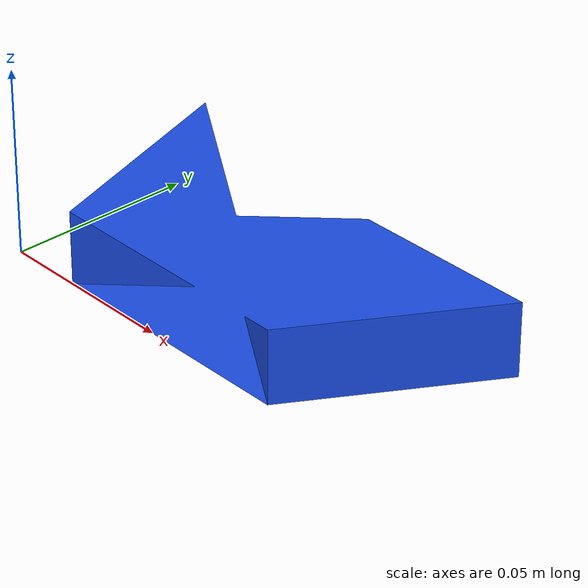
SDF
<sdf version="1.7">
  <model name="infinity">
    <link name="infinity_link">
      <inertial>
        <mass>0.004500</mass>
        <inertia>
          <ixx>1.387500e-06</ixx>
          <iyy>5.437500e-06</iyy>
          <izz>6.750000e-06</izz>
          <ixy>0</ixy>
          <ixz>0</ixz>
          <iyz>0</iyz>
        </inertia>
      </inertial>
      <visual name="visual">
        <geometry>
          <mesh>
            <uri>infinity.obj</uri>
            <scale>1 1 2</scale>
          </mesh>
        </geometry>
                <material>
                    <ambient>0.050 0.150 0.450 1.000</ambient>
                    <diffuse>0.100 0.300 0.900 1.000</diffuse>
                    <specular>0.2 0.2 0.2 1</specular>
                    <emissive>0 0 0 1</emissive>
                </material>
      </visual>
      <collision name="collision">
        <geometry>
          <mesh>
            <uri>infinity.obj</uri>
            <scale>1 1 2</scale>
          </mesh>
        </geometry>
        <surface>
          <friction>
            <ode>
              <mu>5.0</mu>
              <mu2>5.0</mu2>
            </ode>
          </friction>
        </surface>
      </collision>
    </link>
  </model>
</sdf>
